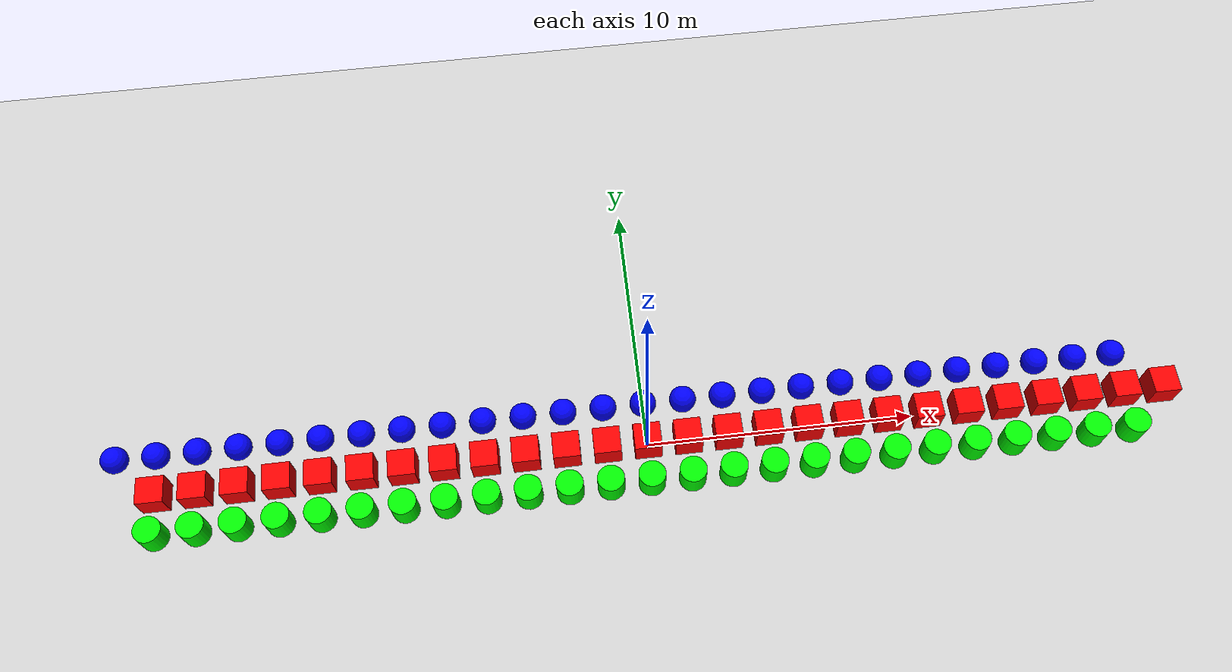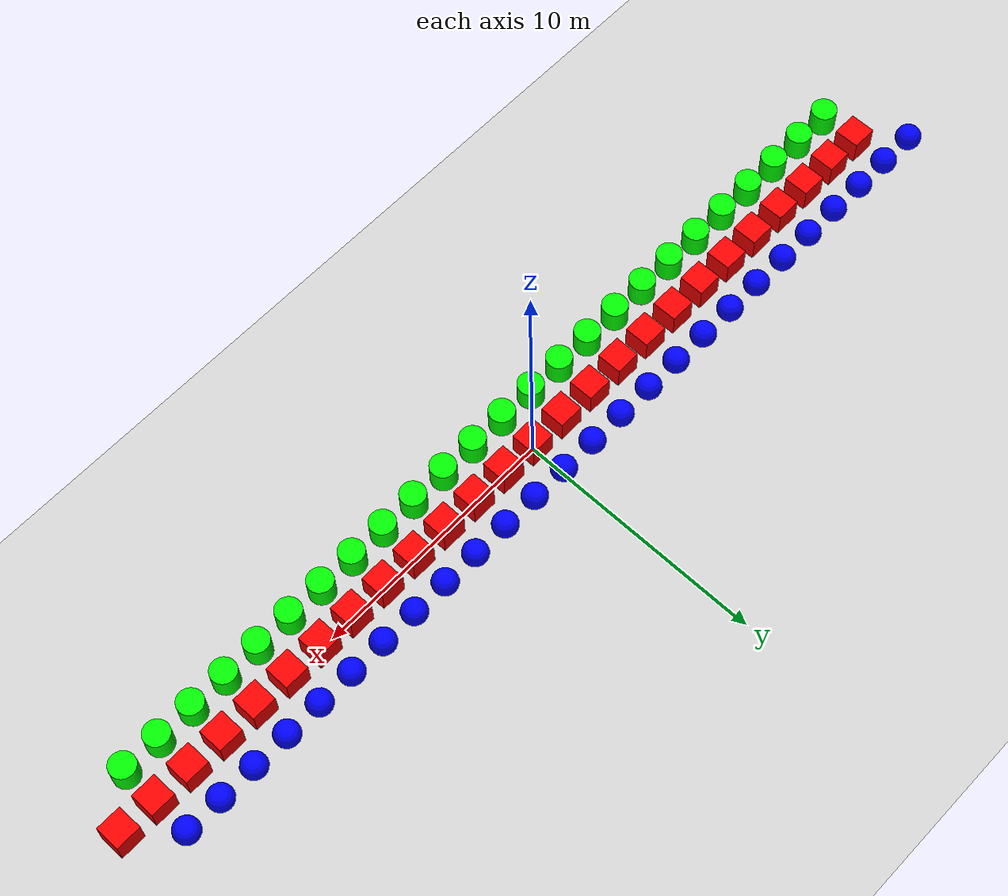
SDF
<sdf version="1.6">
 <world name="shapes">
  <model name="ground_plane">
   <static>true</static>
   <link name="link">
    <collision name="collision">
     <geometry><plane><normal>0 0 1</normal><size>100 100</size></plane></geometry>
    </collision>
    <visual name="visual">
     <geometry><plane><normal>0 0 1</normal><size>100 100</size></plane></geometry>
     <material>
      <ambient>0.8 0.8 0.8 1</ambient>
      <diffuse>0.8 0.8 0.8 1</diffuse>
      <specular>0.8 0.8 0.8 1</specular>
     </material>
    </visual>
   </link>
  </model>
  <model name="sphere_487">
   <static>false</static>
   <pose>-19.5 1.5 0.5 0 0 0</pose>
   <link name="sphere_link">
    <inertial>
     <inertia><ixx>3</ixx><ixy>0</ixy><ixz>0</ixz><iyy>3</iyy><iyz>0</iyz><izz>3</izz></inertia>
     <mass>3.0</mass>
    </inertial>
    <collision name="sphere_collision"><geometry><sphere><radius>0.5</radius></sphere></geometry></collision>
    <visual name="sphere_visual">
     <geometry><sphere><radius>0.5</radius></sphere></geometry>
     <material><ambient>0 0 1 1</ambient><diffuse>0 0 1 1</diffuse><specular>0 0 1 1</specular></material>
    </visual>
   </link>
  </model>
  <model name="box_488">
   <static>false</static>
   <pose>-18.0 0 0.5 0 0 0</pose>
   <link name="box_link">
    <inertial>
     <inertia><ixx>1</ixx><ixy>0</ixy><ixz>0</ixz><iyy>1</iyy><iyz>0</iyz><izz>1</izz></inertia>
     <mass>1.0</mass>
    </inertial>
    <collision name="box_collision"><geometry><box><size>1 1 1</size></box></geometry></collision>
    <visual name="box_visual">
     <geometry><box><size>1 1 1</size></box></geometry>
     <material><ambient>1 0 0 1</ambient><diffuse>1 0 0 1</diffuse><specular>1 0 0 1</specular></material>
    </visual>
   </link>
  </model>
  <model name="cylinder_488">
   <static>false</static>
   <pose>-18.0 -1.5 0.5 0 0 0</pose>
   <link name="cylinder_link">
    <inertial>
     <inertia><ixx>2</ixx><ixy>0</ixy><ixz>0</ixz><iyy>2</iyy><iyz>0</iyz><izz>2</izz></inertia>
     <mass>2.0</mass>
    </inertial>
    <collision name="cylinder_collision">
     <geometry><cylinder><radius>0.5</radius><length>1.0</length></cylinder></geometry>
    </collision>
    <visual name="cylinder_visual">
     <geometry><cylinder><radius>0.5</radius><length>1.0</length></cylinder></geometry>
     <material><ambient>0 1 0 1</ambient><diffuse>0 1 0 1</diffuse><specular>0 1 0 1</specular></material>
    </visual>
   </link>
  </model>
  <model name="sphere_488">
   <static>false</static>
   <pose>-18.0 1.5 0.5 0 0 0</pose>
   <link name="sphere_link">
    <inertial>
     <inertia><ixx>3</ixx><ixy>0</ixy><ixz>0</ixz><iyy>3</iyy><iyz>0</iyz><izz>3</izz></inertia>
     <mass>3.0</mass>
    </inertial>
    <collision name="sphere_collision"><geometry><sphere><radius>0.5</radius></sphere></geometry></collision>
    <visual name="sphere_visual">
     <geometry><sphere><radius>0.5</radius></sphere></geometry>
     <material><ambient>0 0 1 1</ambient><diffuse>0 0 1 1</diffuse><specular>0 0 1 1</specular></material>
    </visual>
   </link>
  </model>
  <model name="box_489">
   <static>false</static>
   <pose>-16.5 0 0.5 0 0 0</pose>
   <link name="box_link">
    <inertial>
     <inertia><ixx>1</ixx><ixy>0</ixy><ixz>0</ixz><iyy>1</iyy><iyz>0</iyz><izz>1</izz></inertia>
     <mass>1.0</mass>
    </inertial>
    <collision name="box_collision"><geometry><box><size>1 1 1</size></box></geometry></collision>
    <visual name="box_visual">
     <geometry><box><size>1 1 1</size></box></geometry>
     <material><ambient>1 0 0 1</ambient><diffuse>1 0 0 1</diffuse><specular>1 0 0 1</specular></material>
    </visual>
   </link>
  </model>
  <model name="cylinder_489">
   <static>false</static>
   <pose>-16.5 -1.5 0.5 0 0 0</pose>
   <link name="cylinder_link">
    <inertial>
     <inertia><ixx>2</ixx><ixy>0</ixy><ixz>0</ixz><iyy>2</iyy><iyz>0</iyz><izz>2</izz></inertia>
     <mass>2.0</mass>
    </inertial>
    <collision name="cylinder_collision">
     <geometry><cylinder><radius>0.5</radius><length>1.0</length></cylinder></geometry>
    </collision>
    <visual name="cylinder_visual">
     <geometry><cylinder><radius>0.5</radius><length>1.0</length></cylinder></geometry>
     <material><ambient>0 1 0 1</ambient><diffuse>0 1 0 1</diffuse><specular>0 1 0 1</specular></material>
    </visual>
   </link>
  </model>
  <model name="sphere_489">
   <static>false</static>
   <pose>-16.5 1.5 0.5 0 0 0</pose>
   <link name="sphere_link">
    <inertial>
     <inertia><ixx>3</ixx><ixy>0</ixy><ixz>0</ixz><iyy>3</iyy><iyz>0</iyz><izz>3</izz></inertia>
     <mass>3.0</mass>
    </inertial>
    <collision name="sphere_collision"><geometry><sphere><radius>0.5</radius></sphere></geometry></collision>
    <visual name="sphere_visual">
     <geometry><sphere><radius>0.5</radius></sphere></geometry>
     <material><ambient>0 0 1 1</ambient><diffuse>0 0 1 1</diffuse><specular>0 0 1 1</specular></material>
    </visual>
   </link>
  </model>
  <model name="box_490">
   <static>false</static>
   <pose>-15.0 0 0.5 0 0 0</pose>
   <link name="box_link">
    <inertial>
     <inertia><ixx>1</ixx><ixy>0</ixy><ixz>0</ixz><iyy>1</iyy><iyz>0</iyz><izz>1</izz></inertia>
     <mass>1.0</mass>
    </inertial>
    <collision name="box_collision"><geometry><box><size>1 1 1</size></box></geometry></collision>
    <visual name="box_visual">
     <geometry><box><size>1 1 1</size></box></geometry>
     <material><ambient>1 0 0 1</ambient><diffuse>1 0 0 1</diffuse><specular>1 0 0 1</specular></material>
    </visual>
   </link>
  </model>
  <model name="cylinder_490">
   <static>false</static>
   <pose>-15.0 -1.5 0.5 0 0 0</pose>
   <link name="cylinder_link">
    <inertial>
     <inertia><ixx>2</ixx><ixy>0</ixy><ixz>0</ixz><iyy>2</iyy><iyz>0</iyz><izz>2</izz></inertia>
     <mass>2.0</mass>
    </inertial>
    <collision name="cylinder_collision">
     <geometry><cylinder><radius>0.5</radius><length>1.0</length></cylinder></geometry>
    </collision>
    <visual name="cylinder_visual">
     <geometry><cylinder><radius>0.5</radius><length>1.0</length></cylinder></geometry>
     <material><ambient>0 1 0 1</ambient><diffuse>0 1 0 1</diffuse><specular>0 1 0 1</specular></material>
    </visual>
   </link>
  </model>
  <model name="sphere_490">
   <static>false</static>
   <pose>-15.0 1.5 0.5 0 0 0</pose>
   <link name="sphere_link">
    <inertial>
     <inertia><ixx>3</ixx><ixy>0</ixy><ixz>0</ixz><iyy>3</iyy><iyz>0</iyz><izz>3</izz></inertia>
     <mass>3.0</mass>
    </inertial>
    <collision name="sphere_collision"><geometry><sphere><radius>0.5</radius></sphere></geometry></collision>
    <visual name="sphere_visual">
     <geometry><sphere><radius>0.5</radius></sphere></geometry>
     <material><ambient>0 0 1 1</ambient><diffuse>0 0 1 1</diffuse><specular>0 0 1 1</specular></material>
    </visual>
   </link>
  </model>
  <model name="box_491">
   <static>false</static>
   <pose>-13.5 0 0.5 0 0 0</pose>
   <link name="box_link">
    <inertial>
     <inertia><ixx>1</ixx><ixy>0</ixy><ixz>0</ixz><iyy>1</iyy><iyz>0</iyz><izz>1</izz></inertia>
     <mass>1.0</mass>
    </inertial>
    <collision name="box_collision"><geometry><box><size>1 1 1</size></box></geometry></collision>
    <visual name="box_visual">
     <geometry><box><size>1 1 1</size></box></geometry>
     <material><ambient>1 0 0 1</ambient><diffuse>1 0 0 1</diffuse><specular>1 0 0 1</specular></material>
    </visual>
   </link>
  </model>
  <model name="cylinder_491">
   <static>false</static>
   <pose>-13.5 -1.5 0.5 0 0 0</pose>
   <link name="cylinder_link">
    <inertial>
     <inertia><ixx>2</ixx><ixy>0</ixy><ixz>0</ixz><iyy>2</iyy><iyz>0</iyz><izz>2</izz></inertia>
     <mass>2.0</mass>
    </inertial>
    <collision name="cylinder_collision">
     <geometry><cylinder><radius>0.5</radius><length>1.0</length></cylinder></geometry>
    </collision>
    <visual name="cylinder_visual">
     <geometry><cylinder><radius>0.5</radius><length>1.0</length></cylinder></geometry>
     <material><ambient>0 1 0 1</ambient><diffuse>0 1 0 1</diffuse><specular>0 1 0 1</specular></material>
    </visual>
   </link>
  </model>
  <model name="sphere_491">
   <static>false</static>
   <pose>-13.5 1.5 0.5 0 0 0</pose>
   <link name="sphere_link">
    <inertial>
     <inertia><ixx>3</ixx><ixy>0</ixy><ixz>0</ixz><iyy>3</iyy><iyz>0</iyz><izz>3</izz></inertia>
     <mass>3.0</mass>
    </inertial>
    <collision name="sphere_collision"><geometry><sphere><radius>0.5</radius></sphere></geometry></collision>
    <visual name="sphere_visual">
     <geometry><sphere><radius>0.5</radius></sphere></geometry>
     <material><ambient>0 0 1 1</ambient><diffuse>0 0 1 1</diffuse><specular>0 0 1 1</specular></material>
    </visual>
   </link>
  </model>
  <model name="box_492">
   <static>false</static>
   <pose>-12.0 0 0.5 0 0 0</pose>
   <link name="box_link">
    <inertial>
     <inertia><ixx>1</ixx><ixy>0</ixy><ixz>0</ixz><iyy>1</iyy><iyz>0</iyz><izz>1</izz></inertia>
     <mass>1.0</mass>
    </inertial>
    <collision name="box_collision"><geometry><box><size>1 1 1</size></box></geometry></collision>
    <visual name="box_visual">
     <geometry><box><size>1 1 1</size></box></geometry>
     <material><ambient>1 0 0 1</ambient><diffuse>1 0 0 1</diffuse><specular>1 0 0 1</specular></material>
    </visual>
   </link>
  </model>
  <model name="cylinder_492">
   <static>false</static>
   <pose>-12.0 -1.5 0.5 0 0 0</pose>
   <link name="cylinder_link">
    <inertial>
     <inertia><ixx>2</ixx><ixy>0</ixy><ixz>0</ixz><iyy>2</iyy><iyz>0</iyz><izz>2</izz></inertia>
     <mass>2.0</mass>
    </inertial>
    <collision name="cylinder_collision">
     <geometry><cylinder><radius>0.5</radius><length>1.0</length></cylinder></geometry>
    </collision>
    <visual name="cylinder_visual">
     <geometry><cylinder><radius>0.5</radius><length>1.0</length></cylinder></geometry>
     <material><ambient>0 1 0 1</ambient><diffuse>0 1 0 1</diffuse><specular>0 1 0 1</specular></material>
    </visual>
   </link>
  </model>
  <model name="sphere_492">
   <static>false</static>
   <pose>-12.0 1.5 0.5 0 0 0</pose>
   <link name="sphere_link">
    <inertial>
     <inertia><ixx>3</ixx><ixy>0</ixy><ixz>0</ixz><iyy>3</iyy><iyz>0</iyz><izz>3</izz></inertia>
     <mass>3.0</mass>
    </inertial>
    <collision name="sphere_collision"><geometry><sphere><radius>0.5</radius></sphere></geometry></collision>
    <visual name="sphere_visual">
     <geometry><sphere><radius>0.5</radius></sphere></geometry>
     <material><ambient>0 0 1 1</ambient><diffuse>0 0 1 1</diffuse><specular>0 0 1 1</specular></material>
    </visual>
   </link>
  </model>
  <model name="box_493">
   <static>false</static>
   <pose>-10.5 0 0.5 0 0 0</pose>
   <link name="box_link">
    <inertial>
     <inertia><ixx>1</ixx><ixy>0</ixy><ixz>0</ixz><iyy>1</iyy><iyz>0</iyz><izz>1</izz></inertia>
     <mass>1.0</mass>
    </inertial>
    <collision name="box_collision"><geometry><box><size>1 1 1</size></box></geometry></collision>
    <visual name="box_visual">
     <geometry><box><size>1 1 1</size></box></geometry>
     <material><ambient>1 0 0 1</ambient><diffuse>1 0 0 1</diffuse><specular>1 0 0 1</specular></material>
    </visual>
   </link>
  </model>
  <model name="cylinder_493">
   <static>false</static>
   <pose>-10.5 -1.5 0.5 0 0 0</pose>
   <link name="cylinder_link">
    <inertial>
     <inertia><ixx>2</ixx><ixy>0</ixy><ixz>0</ixz><iyy>2</iyy><iyz>0</iyz><izz>2</izz></inertia>
     <mass>2.0</mass>
    </inertial>
    <collision name="cylinder_collision">
     <geometry><cylinder><radius>0.5</radius><length>1.0</length></cylinder></geometry>
    </collision>
    <visual name="cylinder_visual">
     <geometry><cylinder><radius>0.5</radius><length>1.0</length></cylinder></geometry>
     <material><ambient>0 1 0 1</ambient><diffuse>0 1 0 1</diffuse><specular>0 1 0 1</specular></material>
    </visual>
   </link>
  </model>
  <model name="sphere_493">
   <static>false</static>
   <pose>-10.5 1.5 0.5 0 0 0</pose>
   <link name="sphere_link">
    <inertial>
     <inertia><ixx>3</ixx><ixy>0</ixy><ixz>0</ixz><iyy>3</iyy><iyz>0</iyz><izz>3</izz></inertia>
     <mass>3.0</mass>
    </inertial>
    <collision name="sphere_collision"><geometry><sphere><radius>0.5</radius></sphere></geometry></collision>
    <visual name="sphere_visual">
     <geometry><sphere><radius>0.5</radius></sphere></geometry>
     <material><ambient>0 0 1 1</ambient><diffuse>0 0 1 1</diffuse><specular>0 0 1 1</specular></material>
    </visual>
   </link>
  </model>
  <model name="box_494">
   <static>false</static>
   <pose>-9.0 0 0.5 0 0 0</pose>
   <link name="box_link">
    <inertial>
     <inertia><ixx>1</ixx><ixy>0</ixy><ixz>0</ixz><iyy>1</iyy><iyz>0</iyz><izz>1</izz></inertia>
     <mass>1.0</mass>
    </inertial>
    <collision name="box_collision"><geometry><box><size>1 1 1</size></box></geometry></collision>
    <visual name="box_visual">
     <geometry><box><size>1 1 1</size></box></geometry>
     <material><ambient>1 0 0 1</ambient><diffuse>1 0 0 1</diffuse><specular>1 0 0 1</specular></material>
    </visual>
   </link>
  </model>
  <model name="cylinder_494">
   <static>false</static>
   <pose>-9.0 -1.5 0.5 0 0 0</pose>
   <link name="cylinder_link">
    <inertial>
     <inertia><ixx>2</ixx><ixy>0</ixy><ixz>0</ixz><iyy>2</iyy><iyz>0</iyz><izz>2</izz></inertia>
     <mass>2.0</mass>
    </inertial>
    <collision name="cylinder_collision">
     <geometry><cylinder><radius>0.5</radius><length>1.0</length></cylinder></geometry>
    </collision>
    <visual name="cylinder_visual">
     <geometry><cylinder><radius>0.5</radius><length>1.0</length></cylinder></geometry>
     <material><ambient>0 1 0 1</ambient><diffuse>0 1 0 1</diffuse><specular>0 1 0 1</specular></material>
    </visual>
   </link>
  </model>
  <model name="sphere_494">
   <static>false</static>
   <pose>-9.0 1.5 0.5 0 0 0</pose>
   <link name="sphere_link">
    <inertial>
     <inertia><ixx>3</ixx><ixy>0</ixy><ixz>0</ixz><iyy>3</iyy><iyz>0</iyz><izz>3</izz></inertia>
     <mass>3.0</mass>
    </inertial>
    <collision name="sphere_collision"><geometry><sphere><radius>0.5</radius></sphere></geometry></collision>
    <visual name="sphere_visual">
     <geometry><sphere><radius>0.5</radius></sphere></geometry>
     <material><ambient>0 0 1 1</ambient><diffuse>0 0 1 1</diffuse><specular>0 0 1 1</specular></material>
    </visual>
   </link>
  </model>
  <model name="box_495">
   <static>false</static>
   <pose>-7.5 0 0.5 0 0 0</pose>
   <link name="box_link">
    <inertial>
     <inertia><ixx>1</ixx><ixy>0</ixy><ixz>0</ixz><iyy>1</iyy><iyz>0</iyz><izz>1</izz></inertia>
     <mass>1.0</mass>
    </inertial>
    <collision name="box_collision"><geometry><box><size>1 1 1</size></box></geometry></collision>
    <visual name="box_visual">
     <geometry><box><size>1 1 1</size></box></geometry>
     <material><ambient>1 0 0 1</ambient><diffuse>1 0 0 1</diffuse><specular>1 0 0 1</specular></material>
    </visual>
   </link>
  </model>
  <model name="cylinder_495">
   <static>false</static>
   <pose>-7.5 -1.5 0.5 0 0 0</pose>
   <link name="cylinder_link">
    <inertial>
     <inertia><ixx>2</ixx><ixy>0</ixy><ixz>0</ixz><iyy>2</iyy><iyz>0</iyz><izz>2</izz></inertia>
     <mass>2.0</mass>
    </inertial>
    <collision name="cylinder_collision">
     <geometry><cylinder><radius>0.5</radius><length>1.0</length></cylinder></geometry>
    </collision>
    <visual name="cylinder_visual">
     <geometry><cylinder><radius>0.5</radius><length>1.0</length></cylinder></geometry>
     <material><ambient>0 1 0 1</ambient><diffuse>0 1 0 1</diffuse><specular>0 1 0 1</specular></material>
    </visual>
   </link>
  </model>
  <model name="sphere_495">
   <static>false</static>
   <pose>-7.5 1.5 0.5 0 0 0</pose>
   <link name="sphere_link">
    <inertial>
     <inertia><ixx>3</ixx><ixy>0</ixy><ixz>0</ixz><iyy>3</iyy><iyz>0</iyz><izz>3</izz></inertia>
     <mass>3.0</mass>
    </inertial>
    <collision name="sphere_collision"><geometry><sphere><radius>0.5</radius></sphere></geometry></collision>
    <visual name="sphere_visual">
     <geometry><sphere><radius>0.5</radius></sphere></geometry>
     <material><ambient>0 0 1 1</ambient><diffuse>0 0 1 1</diffuse><specular>0 0 1 1</specular></material>
    </visual>
   </link>
  </model>
  <model name="box_496">
   <static>false</static>
   <pose>-6.0 0 0.5 0 0 0</pose>
   <link name="box_link">
    <inertial>
     <inertia><ixx>1</ixx><ixy>0</ixy><ixz>0</ixz><iyy>1</iyy><iyz>0</iyz><izz>1</izz></inertia>
     <mass>1.0</mass>
    </inertial>
    <collision name="box_collision"><geometry><box><size>1 1 1</size></box></geometry></collision>
    <visual name="box_visual">
     <geometry><box><size>1 1 1</size></box></geometry>
     <material><ambient>1 0 0 1</ambient><diffuse>1 0 0 1</diffuse><specular>1 0 0 1</specular></material>
    </visual>
   </link>
  </model>
  <model name="cylinder_496">
   <static>false</static>
   <pose>-6.0 -1.5 0.5 0 0 0</pose>
   <link name="cylinder_link">
    <inertial>
     <inertia><ixx>2</ixx><ixy>0</ixy><ixz>0</ixz><iyy>2</iyy><iyz>0</iyz><izz>2</izz></inertia>
     <mass>2.0</mass>
    </inertial>
    <collision name="cylinder_collision">
     <geometry><cylinder><radius>0.5</radius><length>1.0</length></cylinder></geometry>
    </collision>
    <visual name="cylinder_visual">
     <geometry><cylinder><radius>0.5</radius><length>1.0</length></cylinder></geometry>
     <material><ambient>0 1 0 1</ambient><diffuse>0 1 0 1</diffuse><specular>0 1 0 1</specular></material>
    </visual>
   </link>
  </model>
  <model name="sphere_496">
   <static>false</static>
   <pose>-6.0 1.5 0.5 0 0 0</pose>
   <link name="sphere_link">
    <inertial>
     <inertia><ixx>3</ixx><ixy>0</ixy><ixz>0</ixz><iyy>3</iyy><iyz>0</iyz><izz>3</izz></inertia>
     <mass>3.0</mass>
    </inertial>
    <collision name="sphere_collision"><geometry><sphere><radius>0.5</radius></sphere></geometry></collision>
    <visual name="sphere_visual">
     <geometry><sphere><radius>0.5</radius></sphere></geometry>
     <material><ambient>0 0 1 1</ambient><diffuse>0 0 1 1</diffuse><specular>0 0 1 1</specular></material>
    </visual>
   </link>
  </model>
  <model name="box_497">
   <static>false</static>
   <pose>-4.5 0 0.5 0 0 0</pose>
   <link name="box_link">
    <inertial>
     <inertia><ixx>1</ixx><ixy>0</ixy><ixz>0</ixz><iyy>1</iyy><iyz>0</iyz><izz>1</izz></inertia>
     <mass>1.0</mass>
    </inertial>
    <collision name="box_collision"><geometry><box><size>1 1 1</size></box></geometry></collision>
    <visual name="box_visual">
     <geometry><box><size>1 1 1</size></box></geometry>
     <material><ambient>1 0 0 1</ambient><diffuse>1 0 0 1</diffuse><specular>1 0 0 1</specular></material>
    </visual>
   </link>
  </model>
  <model name="cylinder_497">
   <static>false</static>
   <pose>-4.5 -1.5 0.5 0 0 0</pose>
   <link name="cylinder_link">
    <inertial>
     <inertia><ixx>2</ixx><ixy>0</ixy><ixz>0</ixz><iyy>2</iyy><iyz>0</iyz><izz>2</izz></inertia>
     <mass>2.0</mass>
    </inertial>
    <collision name="cylinder_collision">
     <geometry><cylinder><radius>0.5</radius><length>1.0</length></cylinder></geometry>
    </collision>
    <visual name="cylinder_visual">
     <geometry><cylinder><radius>0.5</radius><length>1.0</length></cylinder></geometry>
     <material><ambient>0 1 0 1</ambient><diffuse>0 1 0 1</diffuse><specular>0 1 0 1</specular></material>
    </visual>
   </link>
  </model>
  <model name="sphere_497">
   <static>false</static>
   <pose>-4.5 1.5 0.5 0 0 0</pose>
   <link name="sphere_link">
    <inertial>
     <inertia><ixx>3</ixx><ixy>0</ixy><ixz>0</ixz><iyy>3</iyy><iyz>0</iyz><izz>3</izz></inertia>
     <mass>3.0</mass>
    </inertial>
    <collision name="sphere_collision"><geometry><sphere><radius>0.5</radius></sphere></geometry></collision>
    <visual name="sphere_visual">
     <geometry><sphere><radius>0.5</radius></sphere></geometry>
     <material><ambient>0 0 1 1</ambient><diffuse>0 0 1 1</diffuse><specular>0 0 1 1</specular></material>
    </visual>
   </link>
  </model>
  <model name="box_498">
   <static>false</static>
   <pose>-3.0 0 0.5 0 0 0</pose>
   <link name="box_link">
    <inertial>
     <inertia><ixx>1</ixx><ixy>0</ixy><ixz>0</ixz><iyy>1</iyy><iyz>0</iyz><izz>1</izz></inertia>
     <mass>1.0</mass>
    </inertial>
    <collision name="box_collision"><geometry><box><size>1 1 1</size></box></geometry></collision>
    <visual name="box_visual">
     <geometry><box><size>1 1 1</size></box></geometry>
     <material><ambient>1 0 0 1</ambient><diffuse>1 0 0 1</diffuse><specular>1 0 0 1</specular></material>
    </visual>
   </link>
  </model>
  <model name="cylinder_498">
   <static>false</static>
   <pose>-3.0 -1.5 0.5 0 0 0</pose>
   <link name="cylinder_link">
    <inertial>
     <inertia><ixx>2</ixx><ixy>0</ixy><ixz>0</ixz><iyy>2</iyy><iyz>0</iyz><izz>2</izz></inertia>
     <mass>2.0</mass>
    </inertial>
    <collision name="cylinder_collision">
     <geometry><cylinder><radius>0.5</radius><length>1.0</length></cylinder></geometry>
    </collision>
    <visual name="cylinder_visual">
     <geometry><cylinder><radius>0.5</radius><length>1.0</length></cylinder></geometry>
     <material><ambient>0 1 0 1</ambient><diffuse>0 1 0 1</diffuse><specular>0 1 0 1</specular></material>
    </visual>
   </link>
  </model>
  <model name="sphere_498">
   <static>false</static>
   <pose>-3.0 1.5 0.5 0 0 0</pose>
   <link name="sphere_link">
    <inertial>
     <inertia><ixx>3</ixx><ixy>0</ixy><ixz>0</ixz><iyy>3</iyy><iyz>0</iyz><izz>3</izz></inertia>
     <mass>3.0</mass>
    </inertial>
    <collision name="sphere_collision"><geometry><sphere><radius>0.5</radius></sphere></geometry></collision>
    <visual name="sphere_visual">
     <geometry><sphere><radius>0.5</radius></sphere></geometry>
     <material><ambient>0 0 1 1</ambient><diffuse>0 0 1 1</diffuse><specular>0 0 1 1</specular></material>
    </visual>
   </link>
  </model>
  <model name="box_499">
   <static>false</static>
   <pose>-1.5 0 0.5 0 0 0</pose>
   <link name="box_link">
    <inertial>
     <inertia><ixx>1</ixx><ixy>0</ixy><ixz>0</ixz><iyy>1</iyy><iyz>0</iyz><izz>1</izz></inertia>
     <mass>1.0</mass>
    </inertial>
    <collision name="box_collision"><geometry><box><size>1 1 1</size></box></geometry></collision>
    <visual name="box_visual">
     <geometry><box><size>1 1 1</size></box></geometry>
     <material><ambient>1 0 0 1</ambient><diffuse>1 0 0 1</diffuse><specular>1 0 0 1</specular></material>
    </visual>
   </link>
  </model>
  <model name="cylinder_499">
   <static>false</static>
   <pose>-1.5 -1.5 0.5 0 0 0</pose>
   <link name="cylinder_link">
    <inertial>
     <inertia><ixx>2</ixx><ixy>0</ixy><ixz>0</ixz><iyy>2</iyy><iyz>0</iyz><izz>2</izz></inertia>
     <mass>2.0</mass>
    </inertial>
    <collision name="cylinder_collision">
     <geometry><cylinder><radius>0.5</radius><length>1.0</length></cylinder></geometry>
    </collision>
    <visual name="cylinder_visual">
     <geometry><cylinder><radius>0.5</radius><length>1.0</length></cylinder></geometry>
     <material><ambient>0 1 0 1</ambient><diffuse>0 1 0 1</diffuse><specular>0 1 0 1</specular></material>
    </visual>
   </link>
  </model>
  <model name="sphere_499">
   <static>false</static>
   <pose>-1.5 1.5 0.5 0 0 0</pose>
   <link name="sphere_link">
    <inertial>
     <inertia><ixx>3</ixx><ixy>0</ixy><ixz>0</ixz><iyy>3</iyy><iyz>0</iyz><izz>3</izz></inertia>
     <mass>3.0</mass>
    </inertial>
    <collision name="sphere_collision"><geometry><sphere><radius>0.5</radius></sphere></geometry></collision>
    <visual name="sphere_visual">
     <geometry><sphere><radius>0.5</radius></sphere></geometry>
     <material><ambient>0 0 1 1</ambient><diffuse>0 0 1 1</diffuse><specular>0 0 1 1</specular></material>
    </visual>
   </link>
  </model>
  <model name="box_500">
   <static>false</static>
   <pose>0.0 0 0.5 0 0 0</pose>
   <link name="box_link">
    <inertial>
     <inertia><ixx>1</ixx><ixy>0</ixy><ixz>0</ixz><iyy>1</iyy><iyz>0</iyz><izz>1</izz></inertia>
     <mass>1.0</mass>
    </inertial>
    <collision name="box_collision"><geometry><box><size>1 1 1</size></box></geometry></collision>
    <visual name="box_visual">
     <geometry><box><size>1 1 1</size></box></geometry>
     <material><ambient>1 0 0 1</ambient><diffuse>1 0 0 1</diffuse><specular>1 0 0 1</specular></material>
    </visual>
   </link>
  </model>
  <model name="cylinder_500">
   <static>false</static>
   <pose>0.0 -1.5 0.5 0 0 0</pose>
   <link name="cylinder_link">
    <inertial>
     <inertia><ixx>2</ixx><ixy>0</ixy><ixz>0</ixz><iyy>2</iyy><iyz>0</iyz><izz>2</izz></inertia>
     <mass>2.0</mass>
    </inertial>
    <collision name="cylinder_collision">
     <geometry><cylinder><radius>0.5</radius><length>1.0</length></cylinder></geometry>
    </collision>
    <visual name="cylinder_visual">
     <geometry><cylinder><radius>0.5</radius><length>1.0</length></cylinder></geometry>
     <material><ambient>0 1 0 1</ambient><diffuse>0 1 0 1</diffuse><specular>0 1 0 1</specular></material>
    </visual>
   </link>
  </model>
  <model name="sphere_500">
   <static>false</static>
   <pose>0.0 1.5 0.5 0 0 0</pose>
   <link name="sphere_link">
    <inertial>
     <inertia><ixx>3</ixx><ixy>0</ixy><ixz>0</ixz><iyy>3</iyy><iyz>0</iyz><izz>3</izz></inertia>
     <mass>3.0</mass>
    </inertial>
    <collision name="sphere_collision"><geometry><sphere><radius>0.5</radius></sphere></geometry></collision>
    <visual name="sphere_visual">
     <geometry><sphere><radius>0.5</radius></sphere></geometry>
     <material><ambient>0 0 1 1</ambient><diffuse>0 0 1 1</diffuse><specular>0 0 1 1</specular></material>
    </visual>
   </link>
  </model>
  <model name="box_501">
   <static>false</static>
   <pose>1.5 0 0.5 0 0 0</pose>
   <link name="box_link">
    <inertial>
     <inertia><ixx>1</ixx><ixy>0</ixy><ixz>0</ixz><iyy>1</iyy><iyz>0</iyz><izz>1</izz></inertia>
     <mass>1.0</mass>
    </inertial>
    <collision name="box_collision"><geometry><box><size>1 1 1</size></box></geometry></collision>
    <visual name="box_visual">
     <geometry><box><size>1 1 1</size></box></geometry>
     <material><ambient>1 0 0 1</ambient><diffuse>1 0 0 1</diffuse><specular>1 0 0 1</specular></material>
    </visual>
   </link>
  </model>
  <model name="cylinder_501">
   <static>false</static>
   <pose>1.5 -1.5 0.5 0 0 0</pose>
   <link name="cylinder_link">
    <inertial>
     <inertia><ixx>2</ixx><ixy>0</ixy><ixz>0</ixz><iyy>2</iyy><iyz>0</iyz><izz>2</izz></inertia>
     <mass>2.0</mass>
    </inertial>
    <collision name="cylinder_collision">
     <geometry><cylinder><radius>0.5</radius><length>1.0</length></cylinder></geometry>
    </collision>
    <visual name="cylinder_visual">
     <geometry><cylinder><radius>0.5</radius><length>1.0</length></cylinder></geometry>
     <material><ambient>0 1 0 1</ambient><diffuse>0 1 0 1</diffuse><specular>0 1 0 1</specular></material>
    </visual>
   </link>
  </model>
  <model name="sphere_501">
   <static>false</static>
   <pose>1.5 1.5 0.5 0 0 0</pose>
   <link name="sphere_link">
    <inertial>
     <inertia><ixx>3</ixx><ixy>0</ixy><ixz>0</ixz><iyy>3</iyy><iyz>0</iyz><izz>3</izz></inertia>
     <mass>3.0</mass>
    </inertial>
    <collision name="sphere_collision"><geometry><sphere><radius>0.5</radius></sphere></geometry></collision>
    <visual name="sphere_visual">
     <geometry><sphere><radius>0.5</radius></sphere></geometry>
     <material><ambient>0 0 1 1</ambient><diffuse>0 0 1 1</diffuse><specular>0 0 1 1</specular></material>
    </visual>
   </link>
  </model>
  <model name="box_502">
   <static>false</static>
   <pose>3.0 0 0.5 0 0 0</pose>
   <link name="box_link">
    <inertial>
     <inertia><ixx>1</ixx><ixy>0</ixy><ixz>0</ixz><iyy>1</iyy><iyz>0</iyz><izz>1</izz></inertia>
     <mass>1.0</mass>
    </inertial>
    <collision name="box_collision"><geometry><box><size>1 1 1</size></box></geometry></collision>
    <visual name="box_visual">
     <geometry><box><size>1 1 1</size></box></geometry>
     <material><ambient>1 0 0 1</ambient><diffuse>1 0 0 1</diffuse><specular>1 0 0 1</specular></material>
    </visual>
   </link>
  </model>
  <model name="cylinder_502">
   <static>false</static>
   <pose>3.0 -1.5 0.5 0 0 0</pose>
   <link name="cylinder_link">
    <inertial>
     <inertia><ixx>2</ixx><ixy>0</ixy><ixz>0</ixz><iyy>2</iyy><iyz>0</iyz><izz>2</izz></inertia>
     <mass>2.0</mass>
    </inertial>
    <collision name="cylinder_collision">
     <geometry><cylinder><radius>0.5</radius><length>1.0</length></cylinder></geometry>
    </collision>
    <visual name="cylinder_visual">
     <geometry><cylinder><radius>0.5</radius><length>1.0</length></cylinder></geometry>
     <material><ambient>0 1 0 1</ambient><diffuse>0 1 0 1</diffuse><specular>0 1 0 1</specular></material>
    </visual>
   </link>
  </model>
  <model name="sphere_502">
   <static>false</static>
   <pose>3.0 1.5 0.5 0 0 0</pose>
   <link name="sphere_link">
    <inertial>
     <inertia><ixx>3</ixx><ixy>0</ixy><ixz>0</ixz><iyy>3</iyy><iyz>0</iyz><izz>3</izz></inertia>
     <mass>3.0</mass>
    </inertial>
    <collision name="sphere_collision"><geometry><sphere><radius>0.5</radius></sphere></geometry></collision>
    <visual name="sphere_visual">
     <geometry><sphere><radius>0.5</radius></sphere></geometry>
     <material><ambient>0 0 1 1</ambient><diffuse>0 0 1 1</diffuse><specular>0 0 1 1</specular></material>
    </visual>
   </link>
  </model>
  <model name="box_503">
   <static>false</static>
   <pose>4.5 0 0.5 0 0 0</pose>
   <link name="box_link">
    <inertial>
     <inertia><ixx>1</ixx><ixy>0</ixy><ixz>0</ixz><iyy>1</iyy><iyz>0</iyz><izz>1</izz></inertia>
     <mass>1.0</mass>
    </inertial>
    <collision name="box_collision"><geometry><box><size>1 1 1</size></box></geometry></collision>
    <visual name="box_visual">
     <geometry><box><size>1 1 1</size></box></geometry>
     <material><ambient>1 0 0 1</ambient><diffuse>1 0 0 1</diffuse><specular>1 0 0 1</specular></material>
    </visual>
   </link>
  </model>
  <model name="cylinder_503">
   <static>false</static>
   <pose>4.5 -1.5 0.5 0 0 0</pose>
   <link name="cylinder_link">
    <inertial>
     <inertia><ixx>2</ixx><ixy>0</ixy><ixz>0</ixz><iyy>2</iyy><iyz>0</iyz><izz>2</izz></inertia>
     <mass>2.0</mass>
    </inertial>
    <collision name="cylinder_collision">
     <geometry><cylinder><radius>0.5</radius><length>1.0</length></cylinder></geometry>
    </collision>
    <visual name="cylinder_visual">
     <geometry><cylinder><radius>0.5</radius><length>1.0</length></cylinder></geometry>
     <material><ambient>0 1 0 1</ambient><diffuse>0 1 0 1</diffuse><specular>0 1 0 1</specular></material>
    </visual>
   </link>
  </model>
  <model name="sphere_503">
   <static>false</static>
   <pose>4.5 1.5 0.5 0 0 0</pose>
   <link name="sphere_link">
    <inertial>
     <inertia><ixx>3</ixx><ixy>0</ixy><ixz>0</ixz><iyy>3</iyy><iyz>0</iyz><izz>3</izz></inertia>
     <mass>3.0</mass>
    </inertial>
    <collision name="sphere_collision"><geometry><sphere><radius>0.5</radius></sphere></geometry></collision>
    <visual name="sphere_visual">
     <geometry><sphere><radius>0.5</radius></sphere></geometry>
     <material><ambient>0 0 1 1</ambient><diffuse>0 0 1 1</diffuse><specular>0 0 1 1</specular></material>
    </visual>
   </link>
  </model>
  <model name="box_504">
   <static>false</static>
   <pose>6.0 0 0.5 0 0 0</pose>
   <link name="box_link">
    <inertial>
     <inertia><ixx>1</ixx><ixy>0</ixy><ixz>0</ixz><iyy>1</iyy><iyz>0</iyz><izz>1</izz></inertia>
     <mass>1.0</mass>
    </inertial>
    <collision name="box_collision"><geometry><box><size>1 1 1</size></box></geometry></collision>
    <visual name="box_visual">
     <geometry><box><size>1 1 1</size></box></geometry>
     <material><ambient>1 0 0 1</ambient><diffuse>1 0 0 1</diffuse><specular>1 0 0 1</specular></material>
    </visual>
   </link>
  </model>
  <model name="cylinder_504">
   <static>false</static>
   <pose>6.0 -1.5 0.5 0 0 0</pose>
   <link name="cylinder_link">
    <inertial>
     <inertia><ixx>2</ixx><ixy>0</ixy><ixz>0</ixz><iyy>2</iyy><iyz>0</iyz><izz>2</izz></inertia>
     <mass>2.0</mass>
    </inertial>
    <collision name="cylinder_collision">
     <geometry><cylinder><radius>0.5</radius><length>1.0</length></cylinder></geometry>
    </collision>
    <visual name="cylinder_visual">
     <geometry><cylinder><radius>0.5</radius><length>1.0</length></cylinder></geometry>
     <material><ambient>0 1 0 1</ambient><diffuse>0 1 0 1</diffuse><specular>0 1 0 1</specular></material>
    </visual>
   </link>
  </model>
  <model name="sphere_504">
   <static>false</static>
   <pose>6.0 1.5 0.5 0 0 0</pose>
   <link name="sphere_link">
    <inertial>
     <inertia><ixx>3</ixx><ixy>0</ixy><ixz>0</ixz><iyy>3</iyy><iyz>0</iyz><izz>3</izz></inertia>
     <mass>3.0</mass>
    </inertial>
    <collision name="sphere_collision"><geometry><sphere><radius>0.5</radius></sphere></geometry></collision>
    <visual name="sphere_visual">
     <geometry><sphere><radius>0.5</radius></sphere></geometry>
     <material><ambient>0 0 1 1</ambient><diffuse>0 0 1 1</diffuse><specular>0 0 1 1</specular></material>
    </visual>
   </link>
  </model>
  <model name="box_505">
   <static>false</static>
   <pose>7.5 0 0.5 0 0 0</pose>
   <link name="box_link">
    <inertial>
     <inertia><ixx>1</ixx><ixy>0</ixy><ixz>0</ixz><iyy>1</iyy><iyz>0</iyz><izz>1</izz></inertia>
     <mass>1.0</mass>
    </inertial>
    <collision name="box_collision"><geometry><box><size>1 1 1</size></box></geometry></collision>
    <visual name="box_visual">
     <geometry><box><size>1 1 1</size></box></geometry>
     <material><ambient>1 0 0 1</ambient><diffuse>1 0 0 1</diffuse><specular>1 0 0 1</specular></material>
    </visual>
   </link>
  </model>
  <model name="cylinder_505">
   <static>false</static>
   <pose>7.5 -1.5 0.5 0 0 0</pose>
   <link name="cylinder_link">
    <inertial>
     <inertia><ixx>2</ixx><ixy>0</ixy><ixz>0</ixz><iyy>2</iyy><iyz>0</iyz><izz>2</izz></inertia>
     <mass>2.0</mass>
    </inertial>
    <collision name="cylinder_collision">
     <geometry><cylinder><radius>0.5</radius><length>1.0</length></cylinder></geometry>
    </collision>
    <visual name="cylinder_visual">
     <geometry><cylinder><radius>0.5</radius><length>1.0</length></cylinder></geometry>
     <material><ambient>0 1 0 1</ambient><diffuse>0 1 0 1</diffuse><specular>0 1 0 1</specular></material>
    </visual>
   </link>
  </model>
  <model name="sphere_505">
   <static>false</static>
   <pose>7.5 1.5 0.5 0 0 0</pose>
   <link name="sphere_link">
    <inertial>
     <inertia><ixx>3</ixx><ixy>0</ixy><ixz>0</ixz><iyy>3</iyy><iyz>0</iyz><izz>3</izz></inertia>
     <mass>3.0</mass>
    </inertial>
    <collision name="sphere_collision"><geometry><sphere><radius>0.5</radius></sphere></geometry></collision>
    <visual name="sphere_visual">
     <geometry><sphere><radius>0.5</radius></sphere></geometry>
     <material><ambient>0 0 1 1</ambient><diffuse>0 0 1 1</diffuse><specular>0 0 1 1</specular></material>
    </visual>
   </link>
  </model>
  <model name="box_506">
   <static>false</static>
   <pose>9.0 0 0.5 0 0 0</pose>
   <link name="box_link">
    <inertial>
     <inertia><ixx>1</ixx><ixy>0</ixy><ixz>0</ixz><iyy>1</iyy><iyz>0</iyz><izz>1</izz></inertia>
     <mass>1.0</mass>
    </inertial>
    <collision name="box_collision"><geometry><box><size>1 1 1</size></box></geometry></collision>
    <visual name="box_visual">
     <geometry><box><size>1 1 1</size></box></geometry>
     <material><ambient>1 0 0 1</ambient><diffuse>1 0 0 1</diffuse><specular>1 0 0 1</specular></material>
    </visual>
   </link>
  </model>
  <model name="cylinder_506">
   <static>false</static>
   <pose>9.0 -1.5 0.5 0 0 0</pose>
   <link name="cylinder_link">
    <inertial>
     <inertia><ixx>2</ixx><ixy>0</ixy><ixz>0</ixz><iyy>2</iyy><iyz>0</iyz><izz>2</izz></inertia>
     <mass>2.0</mass>
    </inertial>
    <collision name="cylinder_collision">
     <geometry><cylinder><radius>0.5</radius><length>1.0</length></cylinder></geometry>
    </collision>
    <visual name="cylinder_visual">
     <geometry><cylinder><radius>0.5</radius><length>1.0</length></cylinder></geometry>
     <material><ambient>0 1 0 1</ambient><diffuse>0 1 0 1</diffuse><specular>0 1 0 1</specular></material>
    </visual>
   </link>
  </model>
  <model name="sphere_506">
   <static>false</static>
   <pose>9.0 1.5 0.5 0 0 0</pose>
   <link name="sphere_link">
    <inertial>
     <inertia><ixx>3</ixx><ixy>0</ixy><ixz>0</ixz><iyy>3</iyy><iyz>0</iyz><izz>3</izz></inertia>
     <mass>3.0</mass>
    </inertial>
    <collision name="sphere_collision"><geometry><sphere><radius>0.5</radius></sphere></geometry></collision>
    <visual name="sphere_visual">
     <geometry><sphere><radius>0.5</radius></sphere></geometry>
     <material><ambient>0 0 1 1</ambient><diffuse>0 0 1 1</diffuse><specular>0 0 1 1</specular></material>
    </visual>
   </link>
  </model>
  <model name="box_507">
   <static>false</static>
   <pose>10.5 0 0.5 0 0 0</pose>
   <link name="box_link">
    <inertial>
     <inertia><ixx>1</ixx><ixy>0</ixy><ixz>0</ixz><iyy>1</iyy><iyz>0</iyz><izz>1</izz></inertia>
     <mass>1.0</mass>
    </inertial>
    <collision name="box_collision"><geometry><box><size>1 1 1</size></box></geometry></collision>
    <visual name="box_visual">
     <geometry><box><size>1 1 1</size></box></geometry>
     <material><ambient>1 0 0 1</ambient><diffuse>1 0 0 1</diffuse><specular>1 0 0 1</specular></material>
    </visual>
   </link>
  </model>
  <model name="cylinder_507">
   <static>false</static>
   <pose>10.5 -1.5 0.5 0 0 0</pose>
   <link name="cylinder_link">
    <inertial>
     <inertia><ixx>2</ixx><ixy>0</ixy><ixz>0</ixz><iyy>2</iyy><iyz>0</iyz><izz>2</izz></inertia>
     <mass>2.0</mass>
    </inertial>
    <collision name="cylinder_collision">
     <geometry><cylinder><radius>0.5</radius><length>1.0</length></cylinder></geometry>
    </collision>
    <visual name="cylinder_visual">
     <geometry><cylinder><radius>0.5</radius><length>1.0</length></cylinder></geometry>
     <material><ambient>0 1 0 1</ambient><diffuse>0 1 0 1</diffuse><specular>0 1 0 1</specular></material>
    </visual>
   </link>
  </model>
  <model name="sphere_507">
   <static>false</static>
   <pose>10.5 1.5 0.5 0 0 0</pose>
   <link name="sphere_link">
    <inertial>
     <inertia><ixx>3</ixx><ixy>0</ixy><ixz>0</ixz><iyy>3</iyy><iyz>0</iyz><izz>3</izz></inertia>
     <mass>3.0</mass>
    </inertial>
    <collision name="sphere_collision"><geometry><sphere><radius>0.5</radius></sphere></geometry></collision>
    <visual name="sphere_visual">
     <geometry><sphere><radius>0.5</radius></sphere></geometry>
     <material><ambient>0 0 1 1</ambient><diffuse>0 0 1 1</diffuse><specular>0 0 1 1</specular></material>
    </visual>
   </link>
  </model>
  <model name="box_508">
   <static>false</static>
   <pose>12.0 0 0.5 0 0 0</pose>
   <link name="box_link">
    <inertial>
     <inertia><ixx>1</ixx><ixy>0</ixy><ixz>0</ixz><iyy>1</iyy><iyz>0</iyz><izz>1</izz></inertia>
     <mass>1.0</mass>
    </inertial>
    <collision name="box_collision"><geometry><box><size>1 1 1</size></box></geometry></collision>
    <visual name="box_visual">
     <geometry><box><size>1 1 1</size></box></geometry>
     <material><ambient>1 0 0 1</ambient><diffuse>1 0 0 1</diffuse><specular>1 0 0 1</specular></material>
    </visual>
   </link>
  </model>
  <model name="cylinder_508">
   <static>false</static>
   <pose>12.0 -1.5 0.5 0 0 0</pose>
   <link name="cylinder_link">
    <inertial>
     <inertia><ixx>2</ixx><ixy>0</ixy><ixz>0</ixz><iyy>2</iyy><iyz>0</iyz><izz>2</izz></inertia>
     <mass>2.0</mass>
    </inertial>
    <collision name="cylinder_collision">
     <geometry><cylinder><radius>0.5</radius><length>1.0</length></cylinder></geometry>
    </collision>
    <visual name="cylinder_visual">
     <geometry><cylinder><radius>0.5</radius><length>1.0</length></cylinder></geometry>
     <material><ambient>0 1 0 1</ambient><diffuse>0 1 0 1</diffuse><specular>0 1 0 1</specular></material>
    </visual>
   </link>
  </model>
  <model name="sphere_508">
   <static>false</static>
   <pose>12.0 1.5 0.5 0 0 0</pose>
   <link name="sphere_link">
    <inertial>
     <inertia><ixx>3</ixx><ixy>0</ixy><ixz>0</ixz><iyy>3</iyy><iyz>0</iyz><izz>3</izz></inertia>
     <mass>3.0</mass>
    </inertial>
    <collision name="sphere_collision"><geometry><sphere><radius>0.5</radius></sphere></geometry></collision>
    <visual name="sphere_visual">
     <geometry><sphere><radius>0.5</radius></sphere></geometry>
     <material><ambient>0 0 1 1</ambient><diffuse>0 0 1 1</diffuse><specular>0 0 1 1</specular></material>
    </visual>
   </link>
  </model>
  <model name="box_509">
   <static>false</static>
   <pose>13.5 0 0.5 0 0 0</pose>
   <link name="box_link">
    <inertial>
     <inertia><ixx>1</ixx><ixy>0</ixy><ixz>0</ixz><iyy>1</iyy><iyz>0</iyz><izz>1</izz></inertia>
     <mass>1.0</mass>
    </inertial>
    <collision name="box_collision"><geometry><box><size>1 1 1</size></box></geometry></collision>
    <visual name="box_visual">
     <geometry><box><size>1 1 1</size></box></geometry>
     <material><ambient>1 0 0 1</ambient><diffuse>1 0 0 1</diffuse><specular>1 0 0 1</specular></material>
    </visual>
   </link>
  </model>
  <model name="cylinder_509">
   <static>false</static>
   <pose>13.5 -1.5 0.5 0 0 0</pose>
   <link name="cylinder_link">
    <inertial>
     <inertia><ixx>2</ixx><ixy>0</ixy><ixz>0</ixz><iyy>2</iyy><iyz>0</iyz><izz>2</izz></inertia>
     <mass>2.0</mass>
    </inertial>
    <collision name="cylinder_collision">
     <geometry><cylinder><radius>0.5</radius><length>1.0</length></cylinder></geometry>
    </collision>
    <visual name="cylinder_visual">
     <geometry><cylinder><radius>0.5</radius><length>1.0</length></cylinder></geometry>
     <material><ambient>0 1 0 1</ambient><diffuse>0 1 0 1</diffuse><specular>0 1 0 1</specular></material>
    </visual>
   </link>
  </model>
  <model name="sphere_509">
   <static>false</static>
   <pose>13.5 1.5 0.5 0 0 0</pose>
   <link name="sphere_link">
    <inertial>
     <inertia><ixx>3</ixx><ixy>0</ixy><ixz>0</ixz><iyy>3</iyy><iyz>0</iyz><izz>3</izz></inertia>
     <mass>3.0</mass>
    </inertial>
    <collision name="sphere_collision"><geometry><sphere><radius>0.5</radius></sphere></geometry></collision>
    <visual name="sphere_visual">
     <geometry><sphere><radius>0.5</radius></sphere></geometry>
     <material><ambient>0 0 1 1</ambient><diffuse>0 0 1 1</diffuse><specular>0 0 1 1</specular></material>
    </visual>
   </link>
  </model>
  <model name="box_510">
   <static>false</static>
   <pose>15.0 0 0.5 0 0 0</pose>
   <link name="box_link">
    <inertial>
     <inertia><ixx>1</ixx><ixy>0</ixy><ixz>0</ixz><iyy>1</iyy><iyz>0</iyz><izz>1</izz></inertia>
     <mass>1.0</mass>
    </inertial>
    <collision name="box_collision"><geometry><box><size>1 1 1</size></box></geometry></collision>
    <visual name="box_visual">
     <geometry><box><size>1 1 1</size></box></geometry>
     <material><ambient>1 0 0 1</ambient><diffuse>1 0 0 1</diffuse><specular>1 0 0 1</specular></material>
    </visual>
   </link>
  </model>
  <model name="cylinder_510">
   <static>false</static>
   <pose>15.0 -1.5 0.5 0 0 0</pose>
   <link name="cylinder_link">
    <inertial>
     <inertia><ixx>2</ixx><ixy>0</ixy><ixz>0</ixz><iyy>2</iyy><iyz>0</iyz><izz>2</izz></inertia>
     <mass>2.0</mass>
    </inertial>
    <collision name="cylinder_collision">
     <geometry><cylinder><radius>0.5</radius><length>1.0</length></cylinder></geometry>
    </collision>
    <visual name="cylinder_visual">
     <geometry><cylinder><radius>0.5</radius><length>1.0</length></cylinder></geometry>
     <material><ambient>0 1 0 1</ambient><diffuse>0 1 0 1</diffuse><specular>0 1 0 1</specular></material>
    </visual>
   </link>
  </model>
  <model name="sphere_510">
   <static>false</static>
   <pose>15.0 1.5 0.5 0 0 0</pose>
   <link name="sphere_link">
    <inertial>
     <inertia><ixx>3</ixx><ixy>0</ixy><ixz>0</ixz><iyy>3</iyy><iyz>0</iyz><izz>3</izz></inertia>
     <mass>3.0</mass>
    </inertial>
    <collision name="sphere_collision"><geometry><sphere><radius>0.5</radius></sphere></geometry></collision>
    <visual name="sphere_visual">
     <geometry><sphere><radius>0.5</radius></sphere></geometry>
     <material><ambient>0 0 1 1</ambient><diffuse>0 0 1 1</diffuse><specular>0 0 1 1</specular></material>
    </visual>
   </link>
  </model>
  <model name="box_511">
   <static>false</static>
   <pose>16.5 0 0.5 0 0 0</pose>
   <link name="box_link">
    <inertial>
     <inertia><ixx>1</ixx><ixy>0</ixy><ixz>0</ixz><iyy>1</iyy><iyz>0</iyz><izz>1</izz></inertia>
     <mass>1.0</mass>
    </inertial>
    <collision name="box_collision"><geometry><box><size>1 1 1</size></box></geometry></collision>
    <visual name="box_visual">
     <geometry><box><size>1 1 1</size></box></geometry>
     <material><ambient>1 0 0 1</ambient><diffuse>1 0 0 1</diffuse><specular>1 0 0 1</specular></material>
    </visual>
   </link>
  </model>
  <model name="cylinder_511">
   <static>false</static>
   <pose>16.5 -1.5 0.5 0 0 0</pose>
   <link name="cylinder_link">
    <inertial>
     <inertia><ixx>2</ixx><ixy>0</ixy><ixz>0</ixz><iyy>2</iyy><iyz>0</iyz><izz>2</izz></inertia>
     <mass>2.0</mass>
    </inertial>
    <collision name="cylinder_collision">
     <geometry><cylinder><radius>0.5</radius><length>1.0</length></cylinder></geometry>
    </collision>
    <visual name="cylinder_visual">
     <geometry><cylinder><radius>0.5</radius><length>1.0</length></cylinder></geometry>
     <material><ambient>0 1 0 1</ambient><diffuse>0 1 0 1</diffuse><specular>0 1 0 1</specular></material>
    </visual>
   </link>
  </model>
  <model name="sphere_511">
   <static>false</static>
   <pose>16.5 1.5 0.5 0 0 0</pose>
   <link name="sphere_link">
    <inertial>
     <inertia><ixx>3</ixx><ixy>0</ixy><ixz>0</ixz><iyy>3</iyy><iyz>0</iyz><izz>3</izz></inertia>
     <mass>3.0</mass>
    </inertial>
    <collision name="sphere_collision"><geometry><sphere><radius>0.5</radius></sphere></geometry></collision>
    <visual name="sphere_visual">
     <geometry><sphere><radius>0.5</radius></sphere></geometry>
     <material><ambient>0 0 1 1</ambient><diffuse>0 0 1 1</diffuse><specular>0 0 1 1</specular></material>
    </visual>
   </link>
  </model>
  <model name="box_512">
   <static>false</static>
   <pose>18.0 0 0.5 0 0 0</pose>
   <link name="box_link">
    <inertial>
     <inertia><ixx>1</ixx><ixy>0</ixy><ixz>0</ixz><iyy>1</iyy><iyz>0</iyz><izz>1</izz></inertia>
     <mass>1.0</mass>
    </inertial>
    <collision name="box_collision"><geometry><box><size>1 1 1</size></box></geometry></collision>
    <visual name="box_visual">
     <geometry><box><size>1 1 1</size></box></geometry>
     <material><ambient>1 0 0 1</ambient><diffuse>1 0 0 1</diffuse><specular>1 0 0 1</specular></material>
    </visual>
   </link>
  </model>
  <model name="cylinder_512">
   <static>false</static>
   <pose>18.0 -1.5 0.5 0 0 0</pose>
   <link name="cylinder_link">
    <inertial>
     <inertia><ixx>2</ixx><ixy>0</ixy><ixz>0</ixz><iyy>2</iyy><iyz>0</iyz><izz>2</izz></inertia>
     <mass>2.0</mass>
    </inertial>
    <collision name="cylinder_collision">
     <geometry><cylinder><radius>0.5</radius><length>1.0</length></cylinder></geometry>
    </collision>
    <visual name="cylinder_visual">
     <geometry><cylinder><radius>0.5</radius><length>1.0</length></cylinder></geometry>
     <material><ambient>0 1 0 1</ambient><diffuse>0 1 0 1</diffuse><specular>0 1 0 1</specular></material>
    </visual>
   </link>
  </model>
  <model name="sphere_512">
   <static>false</static>
   <pose>18.0 1.5 0.5 0 0 0</pose>
   <link name="sphere_link">
    <inertial>
     <inertia><ixx>3</ixx><ixy>0</ixy><ixz>0</ixz><iyy>3</iyy><iyz>0</iyz><izz>3</izz></inertia>
     <mass>3.0</mass>
    </inertial>
    <collision name="sphere_collision"><geometry><sphere><radius>0.5</radius></sphere></geometry></collision>
    <visual name="sphere_visual">
     <geometry><sphere><radius>0.5</radius></sphere></geometry>
     <material><ambient>0 0 1 1</ambient><diffuse>0 0 1 1</diffuse><specular>0 0 1 1</specular></material>
    </visual>
   </link>
  </model>
  <model name="box_513">
   <static>false</static>
   <pose>19.5 0 0.5 0 0 0</pose>
   <link name="box_link">
    <inertial>
     <inertia><ixx>1</ixx><ixy>0</ixy><ixz>0</ixz><iyy>1</iyy><iyz>0</iyz><izz>1</izz></inertia>
     <mass>1.0</mass>
    </inertial>
    <collision name="box_collision"><geometry><box><size>1 1 1</size></box></geometry></collision>
    <visual name="box_visual">
     <geometry><box><size>1 1 1</size></box></geometry>
     <material><ambient>1 0 0 1</ambient><diffuse>1 0 0 1</diffuse><specular>1 0 0 1</specular></material>
    </visual>
   </link>
  </model>
 </world>
</sdf>
